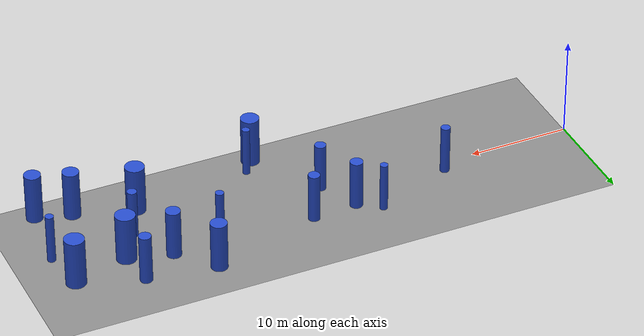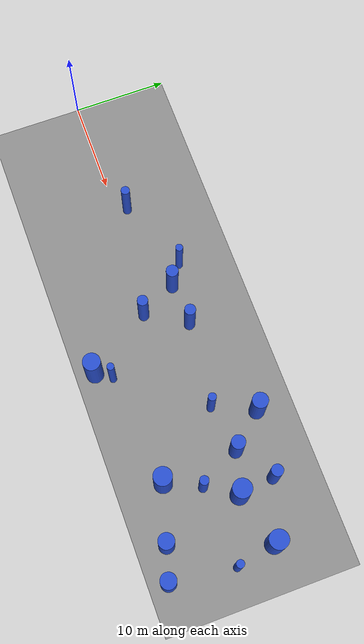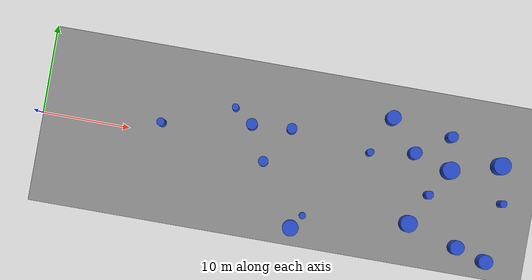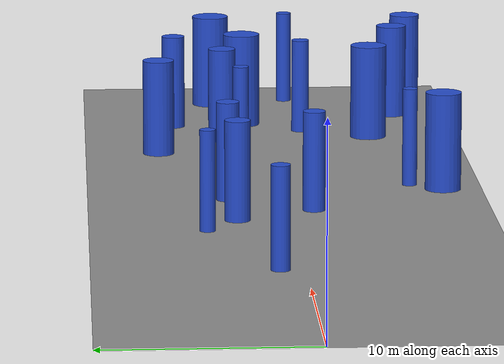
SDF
<sdf version="1.7">
 <world name="forest_randomization_v1">
  <gravity>0 0 -9.8</gravity>
  <light name="sun" type="directional">
   <pose>30 0 20 0 -0 0</pose>
   <diffuse>0.8 0.8 0.8 1</diffuse>
   <specular>0.2 0.2 0.2 1</specular>
   <direction>-0.5 0.5 -1</direction>
   <attenuation><range>10</range></attenuation>
   <spot><inner_angle>0</inner_angle><outer_angle>0</outer_angle><falloff>0</falloff></spot>
  </light>
  <model name="forest_ground_60x20">
   <static>1</static>
   <pose>30 0 0 0 -0 0</pose>
   <link name="link">
    <collision name="collision">
     <geometry><plane><normal>0 0 1</normal><size>60 20</size></plane></geometry>
    </collision>
    <visual name="visual">
     <cast_shadows>0</cast_shadows>
     <geometry><plane><normal>0 0 1</normal><size>60 20</size></plane></geometry>
     <material><ambient>0.45 0.45 0.45 1</ambient><diffuse>0.55 0.55 0.55 1</diffuse></material>
    </visual>
   </link>
  </model>
  <physics name="default_physics" type="ode">
   <max_step_size>0.001</max_step_size>
   <real_time_update_rate>1000</real_time_update_rate>
   <real_time_factor>1</real_time_factor>
  </physics>
  <scene>
   <ambient>0.4 0.4 0.4 1</ambient>
   <background>0.7 0.7 0.7 1</background>
   <shadows>1</shadows>
   <grid>1</grid>
  </scene>
  <magnetic_field>6e-06 2.3e-05 -4.2e-05</magnetic_field>
  <atmosphere type="adiabatic"/>
  <spherical_coordinates>
   <surface_model>EARTH_WGS84</surface_model>
   <latitude_deg>0</latitude_deg>
   <longitude_deg>0</longitude_deg>
   <elevation>0</elevation>
   <heading_deg>0</heading_deg>
  </spherical_coordinates>
  <model name="sparse_0">
   <static>0</static>
   <link name="link">
    <inertial>
     <mass>2</mass>
     <inertia><ixx>4.37017</ixx><ixy>0</ixy><ixz>0</ixz><iyy>4.37017</iyy><iyz>0</iyz><izz>0.40701</izz></inertia>
    </inertial>
    <collision name="collision">
     <geometry><cylinder><length>5</length><radius>0.637973</radius></cylinder></geometry>
     <surface><contact><collide_without_contact>1</collide_without_contact></contact></surface>
    </collision>
    <visual name="visual">
     <geometry><cylinder><length>5</length><radius>0.637973</radius></cylinder></geometry>
     <material>
      <script><uri>file://media/materials/scripts/gazebo.material</uri><name>Gazebo/Blue</name></script>
     </material>
    </visual>
    <gravity>0</gravity>
   </link>
   <pose>23.6341 2.70555 2.5 0 -0 0</pose>
  </model>
  <model name="sparse_1">
   <static>0</static>
   <link name="link">
    <inertial>
     <mass>2</mass>
     <inertia><ixx>4.24223</ixx><ixy>0</ixy><ixz>0</ixz><iyy>4.24223</iyy><iyz>0</iyz><izz>0.15112</izz></inertia>
    </inertial>
    <collision name="collision">
     <geometry><cylinder><length>5</length><radius>0.388741</radius></cylinder></geometry>
     <surface><contact><collide_without_contact>1</collide_without_contact></contact></surface>
    </collision>
    <visual name="visual">
     <geometry><cylinder><length>5</length><radius>0.388741</radius></cylinder></geometry>
     <material>
      <script><uri>file://media/materials/scripts/gazebo.material</uri><name>Gazebo/Blue</name></script>
     </material>
    </visual>
    <gravity>0</gravity>
   </link>
   <pose>21.5062 4.24736 2.5 0 -0 0</pose>
  </model>
  <model name="sparse_2">
   <static>0</static>
   <link name="link">
    <inertial>
     <mass>2</mass>
     <inertia><ixx>4.27329</ixx><ixy>0</ixy><ixz>0</ixz><iyy>4.27329</iyy><iyz>0</iyz><izz>0.213256</izz></inertia>
    </inertial>
    <collision name="collision">
     <geometry><cylinder><length>5</length><radius>0.461797</radius></cylinder></geometry>
     <surface><contact><collide_without_contact>1</collide_without_contact></contact></surface>
    </collision>
    <visual name="visual">
     <geometry><cylinder><length>5</length><radius>0.461797</radius></cylinder></geometry>
     <material>
      <script><uri>file://media/materials/scripts/gazebo.material</uri><name>Gazebo/Blue</name></script>
     </material>
    </visual>
    <gravity>0</gravity>
   </link>
   <pose>13.5733 1.18253 2.5 0 -0 0</pose>
  </model>
  <model name="medium_3">
   <static>0</static>
   <link name="link">
    <inertial>
     <mass>2</mass>
     <inertia><ixx>4.3357</ixx><ixy>0</ixy><ixz>0</ixz><iyy>4.3357</iyy><iyz>0</iyz><izz>0.338067</izz></inertia>
    </inertial>
    <collision name="collision">
     <geometry><cylinder><length>5</length><radius>0.581435</radius></cylinder></geometry>
     <surface><contact><collide_without_contact>1</collide_without_contact></contact></surface>
    </collision>
    <visual name="visual">
     <geometry><cylinder><length>5</length><radius>0.581435</radius></cylinder></geometry>
     <material>
      <script><uri>file://media/materials/scripts/gazebo.material</uri><name>Gazebo/Blue</name></script>
     </material>
    </visual>
    <gravity>0</gravity>
   </link>
   <pose>28.1274 2.97955 2.5 0 -0 0</pose>
  </model>
  <model name="medium_4">
   <static>0</static>
   <link name="link">
    <inertial>
     <mass>2</mass>
     <inertia><ixx>4.23711</ixx><ixy>0</ixy><ixz>0</ixz><iyy>4.23711</iyy><iyz>0</iyz><izz>0.140891</izz></inertia>
    </inertial>
    <collision name="collision">
     <geometry><cylinder><length>5</length><radius>0.375354</radius></cylinder></geometry>
     <surface><contact><collide_without_contact>1</collide_without_contact></contact></surface>
    </collision>
    <visual name="visual">
     <geometry><cylinder><length>5</length><radius>0.375354</radius></cylinder></geometry>
     <material>
      <script><uri>file://media/materials/scripts/gazebo.material</uri><name>Gazebo/Blue</name></script>
     </material>
    </visual>
    <gravity>0</gravity>
   </link>
   <pose>30.9674 -6.40288 2.5 0 -0 0</pose>
  </model>
  <model name="medium_5">
   <static>0</static>
   <link name="link">
    <inertial>
     <mass>2</mass>
     <inertia><ixx>4.25267</ixx><ixy>0</ixy><ixz>0</ixz><iyy>4.25267</iyy><iyz>0</iyz><izz>0.172009</izz></inertia>
    </inertial>
    <collision name="collision">
     <geometry><cylinder><length>5</length><radius>0.414739</radius></cylinder></geometry>
     <surface><contact><collide_without_contact>1</collide_without_contact></contact></surface>
    </collision>
    <visual name="visual">
     <geometry><cylinder><length>5</length><radius>0.414739</radius></cylinder></geometry>
     <material>
      <script><uri>file://media/materials/scripts/gazebo.material</uri><name>Gazebo/Blue</name></script>
     </material>
    </visual>
    <gravity>0</gravity>
   </link>
   <pose>37.2236 1.88884 2.5 0 -0 0</pose>
  </model>
  <model name="medium_6">
   <static>0</static>
   <link name="link">
    <inertial>
     <mass>2</mass>
     <inertia><ixx>4.32288</ixx><ixy>0</ixy><ixz>0</ixz><iyy>4.32288</iyy><iyz>0</iyz><izz>0.312422</izz></inertia>
    </inertial>
    <collision name="collision">
     <geometry><cylinder><length>5</length><radius>0.558948</radius></cylinder></geometry>
     <surface><contact><collide_without_contact>1</collide_without_contact></contact></surface>
    </collision>
    <visual name="visual">
     <geometry><cylinder><length>5</length><radius>0.558948</radius></cylinder></geometry>
     <material>
      <script><uri>file://media/materials/scripts/gazebo.material</uri><name>Gazebo/Blue</name></script>
     </material>
    </visual>
    <gravity>0</gravity>
   </link>
   <pose>25.5932 -1.17175 2.5 0 -0 0</pose>
  </model>
  <model name="medium_7">
   <static>0</static>
   <link name="link">
    <inertial>
     <mass>2</mass>
     <inertia><ixx>4.49954</ixx><ixy>0</ixy><ixz>0</ixz><iyy>4.49954</iyy><iyz>0</iyz><izz>0.665741</izz></inertia>
    </inertial>
    <collision name="collision">
     <geometry><cylinder><length>5</length><radius>0.81593</radius></cylinder></geometry>
     <surface><contact><collide_without_contact>1</collide_without_contact></contact></surface>
    </collision>
    <visual name="visual">
     <geometry><cylinder><length>5</length><radius>0.81593</radius></cylinder></geometry>
     <material>
      <script><uri>file://media/materials/scripts/gazebo.material</uri><name>Gazebo/Blue</name></script>
     </material>
    </visual>
    <gravity>0</gravity>
   </link>
   <pose>39.1422 6.14452 2.5 0 -0 0</pose>
  </model>
  <model name="medium_8">
   <static>0</static>
   <link name="link">
    <inertial>
     <mass>2</mass>
     <inertia><ixx>4.5841</ixx><ixy>0</ixy><ixz>0</ixz><iyy>4.5841</iyy><iyz>0</iyz><izz>0.834867</izz></inertia>
    </inertial>
    <collision name="collision">
     <geometry><cylinder><length>5</length><radius>0.913711</radius></cylinder></geometry>
     <surface><contact><collide_without_contact>1</collide_without_contact></contact></surface>
    </collision>
    <visual name="visual">
     <geometry><cylinder><length>5</length><radius>0.913711</radius></cylinder></geometry>
     <material>
      <script><uri>file://media/materials/scripts/gazebo.material</uri><name>Gazebo/Blue</name></script>
     </material>
    </visual>
    <gravity>0</gravity>
   </link>
   <pose>29.8709 -7.99867 2.5 0 -0 0</pose>
  </model>
  <model name="dense_9">
   <static>0</static>
   <link name="link">
    <inertial>
     <mass>2</mass>
     <inertia><ixx>4.6488</ixx><ixy>0</ixy><ixz>0</ixz><iyy>4.6488</iyy><iyz>0</iyz><izz>0.964257</izz></inertia>
    </inertial>
    <collision name="collision">
     <geometry><cylinder><length>5</length><radius>0.981966</radius></cylinder></geometry>
     <surface><contact><collide_without_contact>1</collide_without_contact></contact></surface>
    </collision>
    <visual name="visual">
     <geometry><cylinder><length>5</length><radius>0.981966</radius></cylinder></geometry>
     <material>
      <script><uri>file://media/materials/scripts/gazebo.material</uri><name>Gazebo/Blue</name></script>
     </material>
    </visual>
    <gravity>0</gravity>
   </link>
   <pose>46.4457 1.43331 2.5 0 -0 0</pose>
  </model>
  <model name="dense_10">
   <static>0</static>
   <link name="link">
    <inertial>
     <mass>2</mass>
     <inertia><ixx>4.65062</ixx><ixy>0</ixy><ixz>0</ixz><iyy>4.65062</iyy><iyz>0</iyz><izz>0.967902</izz></inertia>
    </inertial>
    <collision name="collision">
     <geometry><cylinder><length>5</length><radius>0.98382</radius></cylinder></geometry>
     <surface><contact><collide_without_contact>1</collide_without_contact></contact></surface>
    </collision>
    <visual name="visual">
     <geometry><cylinder><length>5</length><radius>0.98382</radius></cylinder></geometry>
     <material>
      <script><uri>file://media/materials/scripts/gazebo.material</uri><name>Gazebo/Blue</name></script>
     </material>
    </visual>
    <gravity>0</gravity>
   </link>
   <pose>51.9974 2.90492 2.5 0 -0 0</pose>
  </model>
  <model name="dense_11">
   <static>0</static>
   <link name="link">
    <inertial>
     <mass>2</mass>
     <inertia><ixx>4.49835</ixx><ixy>0</ixy><ixz>0</ixz><iyy>4.49835</iyy><iyz>0</iyz><izz>0.663365</izz></inertia>
    </inertial>
    <collision name="collision">
     <geometry><cylinder><length>5</length><radius>0.814472</radius></cylinder></geometry>
     <surface><contact><collide_without_contact>1</collide_without_contact></contact></surface>
    </collision>
    <visual name="visual">
     <geometry><cylinder><length>5</length><radius>0.814472</radius></cylinder></geometry>
     <material>
      <script><uri>file://media/materials/scripts/gazebo.material</uri><name>Gazebo/Blue</name></script>
     </material>
    </visual>
    <gravity>0</gravity>
   </link>
   <pose>48.5544 -6.95879 2.5 0 -0 0</pose>
  </model>
  <model name="dense_12">
   <static>0</static>
   <link name="link">
    <inertial>
     <mass>2</mass>
     <inertia><ixx>4.27761</ixx><ixy>0</ixy><ixz>0</ixz><iyy>4.27761</iyy><iyz>0</iyz><izz>0.221896</izz></inertia>
    </inertial>
    <collision name="collision">
     <geometry><cylinder><length>5</length><radius>0.471058</radius></cylinder></geometry>
     <surface><contact><collide_without_contact>1</collide_without_contact></contact></surface>
    </collision>
    <visual name="visual">
     <geometry><cylinder><length>5</length><radius>0.471058</radius></cylinder></geometry>
     <material>
      <script><uri>file://media/materials/scripts/gazebo.material</uri><name>Gazebo/Blue</name></script>
     </material>
    </visual>
    <gravity>0</gravity>
   </link>
   <pose>44.5188 -1.68094 2.5 0 -0 0</pose>
  </model>
  <model name="dense_13">
   <static>0</static>
   <link name="link">
    <inertial>
     <mass>2</mass>
     <inertia><ixx>4.35252</ixx><ixy>0</ixy><ixz>0</ixz><iyy>4.35252</iyy><iyz>0</iyz><izz>0.37171</izz></inertia>
    </inertial>
    <collision name="collision">
     <geometry><cylinder><length>5</length><radius>0.60968</radius></cylinder></geometry>
     <surface><contact><collide_without_contact>1</collide_without_contact></contact></surface>
    </collision>
    <visual name="visual">
     <geometry><cylinder><length>5</length><radius>0.60968</radius></cylinder></geometry>
     <material>
      <script><uri>file://media/materials/scripts/gazebo.material</uri><name>Gazebo/Blue</name></script>
     </material>
    </visual>
    <gravity>0</gravity>
   </link>
   <pose>45.9971 5.15946 2.5 0 -0 0</pose>
  </model>
  <model name="dense_14">
   <static>0</static>
   <link name="link">
    <inertial>
     <mass>2</mass>
     <inertia><ixx>4.42561</ixx><ixy>0</ixy><ixz>0</ixz><iyy>4.42561</iyy><iyz>0</iyz><izz>0.517878</izz></inertia>
    </inertial>
    <collision name="collision">
     <geometry><cylinder><length>5</length><radius>0.719637</radius></cylinder></geometry>
     <surface><contact><collide_without_contact>1</collide_without_contact></contact></surface>
    </collision>
    <visual name="visual">
     <geometry><cylinder><length>5</length><radius>0.719637</radius></cylinder></geometry>
     <material>
      <script><uri>file://media/materials/scripts/gazebo.material</uri><name>Gazebo/Blue</name></script>
     </material>
    </visual>
    <gravity>0</gravity>
   </link>
   <pose>42.2178 2.67459 2.5 0 -0 0</pose>
  </model>
  <model name="dense_15">
   <static>0</static>
   <link name="link">
    <inertial>
     <mass>2</mass>
     <inertia><ixx>4.50049</ixx><ixy>0</ixy><ixz>0</ixz><iyy>4.50049</iyy><iyz>0</iyz><izz>0.667645</izz></inertia>
    </inertial>
    <collision name="collision">
     <geometry><cylinder><length>5</length><radius>0.817095</radius></cylinder></geometry>
     <surface><contact><collide_without_contact>1</collide_without_contact></contact></surface>
    </collision>
    <visual name="visual">
     <geometry><cylinder><length>5</length><radius>0.817095</radius></cylinder></geometry>
     <material>
      <script><uri>file://media/materials/scripts/gazebo.material</uri><name>Gazebo/Blue</name></script>
     </material>
    </visual>
    <gravity>0</gravity>
   </link>
   <pose>51.9599 -7.99154 2.5 0 -0 0</pose>
  </model>
  <model name="dense_16">
   <static>0</static>
   <link name="link">
    <inertial>
     <mass>2</mass>
     <inertia><ixx>4.62423</ixx><ixy>0</ixy><ixz>0</ixz><iyy>4.62423</iyy><iyz>0</iyz><izz>0.915131</izz></inertia>
    </inertial>
    <collision name="collision">
     <geometry><cylinder><length>5</length><radius>0.956625</radius></cylinder></geometry>
     <surface><contact><collide_without_contact>1</collide_without_contact></contact></surface>
    </collision>
    <visual name="visual">
     <geometry><cylinder><length>5</length><radius>0.956625</radius></cylinder></geometry>
     <material>
      <script><uri>file://media/materials/scripts/gazebo.material</uri><name>Gazebo/Blue</name></script>
     </material>
    </visual>
    <gravity>0</gravity>
   </link>
   <pose>42.8084 -5.24505 2.5 0 -0 0</pose>
  </model>
  <model name="dense_17">
   <static>0</static>
   <link name="link">
    <inertial>
     <mass>2</mass>
     <inertia><ixx>4.25035</ixx><ixy>0</ixy><ixz>0</ixz><iyy>4.25035</iyy><iyz>0</iyz><izz>0.167375</izz></inertia>
    </inertial>
    <collision name="collision">
     <geometry><cylinder><length>5</length><radius>0.409115</radius></cylinder></geometry>
     <surface><contact><collide_without_contact>1</collide_without_contact></contact></surface>
    </collision>
    <visual name="visual">
     <geometry><cylinder><length>5</length><radius>0.409115</radius></cylinder></geometry>
     <material>
      <script><uri>file://media/materials/scripts/gazebo.material</uri><name>Gazebo/Blue</name></script>
     </material>
    </visual>
    <gravity>0</gravity>
   </link>
   <pose>52.8141 -1.25446 2.5 0 -0 0</pose>
  </model>
 </world>
</sdf>
